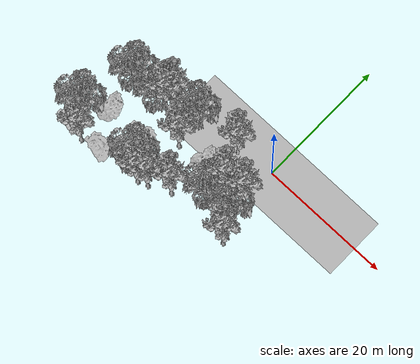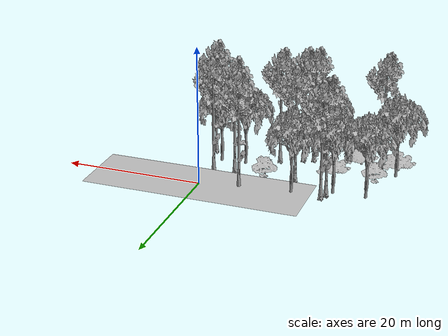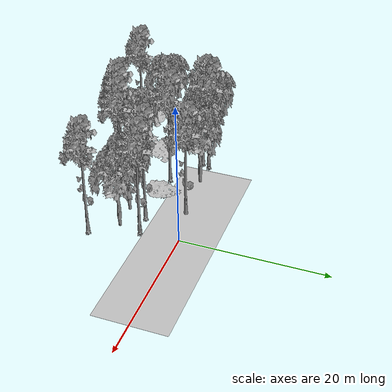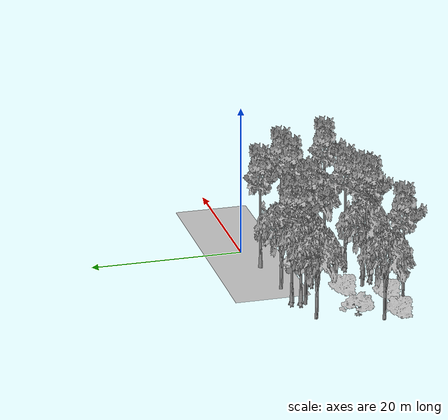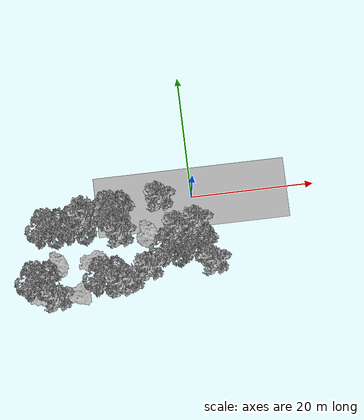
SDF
<sdf version="1.7">
 <world name="default">
  <model name="ground_plane">
   <static>1</static>
   <link name="link">
    <collision name="collision">
     <pose>-50 0 0 0 -0 0</pose>
     <geometry><plane><normal>0 0 1</normal><size>100 100</size></plane></geometry>
     <surface><contact><ode><min_depth>0.01</min_depth><max_vel>0</max_vel></ode></contact></surface>
    </collision>
    <visual name="grass">
     <cast_shadows>0</cast_shadows>
     <geometry>
      <mesh>
       <scale>0.5814285714285714 0.18142857142857144 0.1</scale>
       <uri>file://grass_plane/meshes/grass_plane.dae</uri>
      </mesh>
     </geometry>
    </visual>
   </link>
  </model>
  <model name="Tree 9">
   <static>1</static>
   <pose>-23.025613929217126 -8.91676801810691 0 1.57079 -0 0</pose>
   <link name="link">
    <collision name="collision">
     <geometry><mesh><scale>4 2.5 4</scale><uri>model://tree_1/meshes/tree_1.obj</uri></mesh></geometry>
    </collision>
    <visual name="visual">
     <geometry><mesh><scale>4 2.5 4</scale><uri>model://tree_1/meshes/tree_1.obj</uri></mesh></geometry>
    </visual>
   </link>
  </model>
  <model name="Tree 36">
   <static>1</static>
   <pose>-17.526671311683167 -3.070639153717357 0 1.57079 -0 0</pose>
   <link name="link">
    <collision name="collision">
     <geometry><mesh><scale>3.5 5 3.5</scale><uri>model://tree_9/meshes/tree_9.obj</uri></mesh></geometry>
    </collision>
    <visual name="visual">
     <geometry><mesh><scale>3.5 5 3.5</scale><uri>model://tree_9/meshes/tree_9.obj</uri></mesh></geometry>
    </visual>
   </link>
  </model>
  <model name="Tree 39">
   <static>1</static>
   <pose>-0.41180649521786705 -8.414782605388787 0 1.57079 -0 0</pose>
   <link name="link">
    <collision name="collision">
     <geometry><mesh><scale>3.5 5 3.5</scale><uri>model://tree_2/meshes/tree_2.obj</uri></mesh></geometry>
    </collision>
    <visual name="visual">
     <geometry><mesh><scale>3.5 5 3.5</scale><uri>model://tree_2/meshes/tree_2.obj</uri></mesh></geometry>
    </visual>
   </link>
  </model>
  <model name="Tree 43">
   <static>1</static>
   <pose>1.9057205157418835 -11.964457599320308 0 1.57079 -0 0</pose>
   <link name="link">
    <collision name="collision">
     <geometry><mesh><scale>3.5 5 3.5</scale><uri>model://tree_9/meshes/tree_9.obj</uri></mesh></geometry>
    </collision>
    <visual name="visual">
     <geometry><mesh><scale>3.5 5 3.5</scale><uri>model://tree_9/meshes/tree_9.obj</uri></mesh></geometry>
    </visual>
   </link>
  </model>
  <model name="Tree 45">
   <static>1</static>
   <pose>-13.003659625191375 -1.818947921730059 0 1.57079 -0 0</pose>
   <link name="link">
    <collision name="collision">
     <geometry><mesh><scale>3.5 5 3.5</scale><uri>model://tree_2/meshes/tree_2.obj</uri></mesh></geometry>
    </collision>
    <visual name="visual">
     <geometry><mesh><scale>3.5 5 3.5</scale><uri>model://tree_2/meshes/tree_2.obj</uri></mesh></geometry>
    </visual>
   </link>
  </model>
  <model name="Tree 47">
   <static>1</static>
   <pose>-5.517347171383321 -1.140977178630333 0 1.57079 -0 0</pose>
   <link name="link">
    <collision name="collision">
     <geometry><mesh><scale>3.5 5 3.5</scale><uri>model://tree_9/meshes/tree_9.obj</uri></mesh></geometry>
    </collision>
    <visual name="visual">
     <geometry><mesh><scale>3.5 5 3.5</scale><uri>model://tree_9/meshes/tree_9.obj</uri></mesh></geometry>
    </visual>
   </link>
  </model>
  <model name="Tree 54">
   <static>1</static>
   <pose>-18.480550047731416 -3.458089286826251 0 1.57079 -0 0</pose>
   <link name="link">
    <collision name="collision">
     <geometry><mesh><scale>3.5 5 3.5</scale><uri>model://tree_2/meshes/tree_2.obj</uri></mesh></geometry>
    </collision>
    <visual name="visual">
     <geometry><mesh><scale>3.5 5 3.5</scale><uri>model://tree_2/meshes/tree_2.obj</uri></mesh></geometry>
    </visual>
   </link>
  </model>
  <model name="Tree 81">
   <static>1</static>
   <pose>-11.330172826422043 -13.205206222225614 0 1.57079 -0 0</pose>
   <link name="link">
    <collision name="collision">
     <geometry><mesh><scale>3.5 5 3.5</scale><uri>model://tree_9/meshes/tree_9.obj</uri></mesh></geometry>
    </collision>
    <visual name="visual">
     <geometry><mesh><scale>3.5 5 3.5</scale><uri>model://tree_9/meshes/tree_9.obj</uri></mesh></geometry>
    </visual>
   </link>
  </model>
  <model name="Tree 86">
   <static>1</static>
   <pose>-25.532316332572503 -11.572508097937725 0 1.57079 -0 0</pose>
   <link name="link">
    <collision name="collision">
     <geometry><mesh><scale>3.5 5 3.5</scale><uri>model://tree_2/meshes/tree_2.obj</uri></mesh></geometry>
    </collision>
    <visual name="visual">
     <geometry><mesh><scale>3.5 5 3.5</scale><uri>model://tree_2/meshes/tree_2.obj</uri></mesh></geometry>
    </visual>
   </link>
  </model>
  <model name="Tree 95">
   <static>1</static>
   <pose>-0.12762539678974605 -5.492956377508106 0 1.57079 -0 0</pose>
   <link name="link">
    <collision name="collision">
     <geometry><mesh><scale>3.5 5 3.5</scale><uri>model://tree_9/meshes/tree_9.obj</uri></mesh></geometry>
    </collision>
    <visual name="visual">
     <geometry><mesh><scale>3.5 5 3.5</scale><uri>model://tree_9/meshes/tree_9.obj</uri></mesh></geometry>
    </visual>
   </link>
  </model>
  <model name="Tree 98">
   <static>1</static>
   <pose>-7.95290869777849 -5.442726312949745 0 1.57079 -0 0</pose>
   <link name="link">
    <collision name="collision">
     <geometry><mesh><scale>4 2.5 4</scale><uri>model://tree_1/meshes/tree_1.obj</uri></mesh></geometry>
    </collision>
    <visual name="visual">
     <geometry><mesh><scale>4 2.5 4</scale><uri>model://tree_1/meshes/tree_1.obj</uri></mesh></geometry>
    </visual>
   </link>
  </model>
  <model name="Tree 99">
   <static>1</static>
   <pose>-4.020987846555599 -8.618567439583698 0 1.57079 -0 0</pose>
   <link name="link">
    <collision name="collision">
     <geometry><mesh><scale>3.5 5 3.5</scale><uri>model://tree_2/meshes/tree_2.obj</uri></mesh></geometry>
    </collision>
    <visual name="visual">
     <geometry><mesh><scale>3.5 5 3.5</scale><uri>model://tree_2/meshes/tree_2.obj</uri></mesh></geometry>
    </visual>
   </link>
  </model>
  <model name="Tree 116">
   <static>1</static>
   <pose>-23.090929921111826 -3.5014836241395795 0 1.57079 -0 0</pose>
   <link name="link">
    <collision name="collision">
     <geometry><mesh><scale>3.5 5 3.5</scale><uri>model://tree_2/meshes/tree_2.obj</uri></mesh></geometry>
    </collision>
    <visual name="visual">
     <geometry><mesh><scale>3.5 5 3.5</scale><uri>model://tree_2/meshes/tree_2.obj</uri></mesh></geometry>
    </visual>
   </link>
  </model>
  <model name="Tree 124">
   <static>1</static>
   <pose>-12.79872232998133 -13.719742763202937 0 1.57079 -0 0</pose>
   <link name="link">
    <collision name="collision">
     <geometry><mesh><scale>3.5 5 3.5</scale><uri>model://tree_9/meshes/tree_9.obj</uri></mesh></geometry>
    </collision>
    <visual name="visual">
     <geometry><mesh><scale>3.5 5 3.5</scale><uri>model://tree_9/meshes/tree_9.obj</uri></mesh></geometry>
    </visual>
   </link>
  </model>
  <model name="Tree 127">
   <static>1</static>
   <pose>-16.95840245557479 -9.158433889548634 0 1.57079 -0 0</pose>
   <link name="link">
    <collision name="collision">
     <geometry><mesh><scale>3 2 3</scale><uri>model://tree_3/meshes/tree_3.obj</uri></mesh></geometry>
    </collision>
    <visual name="visual">
     <geometry><mesh><scale>3 2 3</scale><uri>model://tree_3/meshes/tree_3.obj</uri></mesh></geometry>
    </visual>
   </link>
  </model>
  <model name="Tree 145">
   <static>1</static>
   <pose>-19.845235098343053 -14.102809528426235 0 1.57079 -0 0</pose>
   <link name="link">
    <collision name="collision">
     <geometry><mesh><scale>3 2 3</scale><uri>model://tree_3/meshes/tree_3.obj</uri></mesh></geometry>
    </collision>
    <visual name="visual">
     <geometry><mesh><scale>3 2 3</scale><uri>model://tree_3/meshes/tree_3.obj</uri></mesh></geometry>
    </visual>
   </link>
  </model>
  <model name="Tree 149">
   <static>1</static>
   <pose>-3.178500959724275 -5.983369743947893 0 1.57079 -0 0</pose>
   <link name="link">
    <collision name="collision">
     <geometry><mesh><scale>3.5 5 3.5</scale><uri>model://tree_9/meshes/tree_9.obj</uri></mesh></geometry>
    </collision>
    <visual name="visual">
     <geometry><mesh><scale>3.5 5 3.5</scale><uri>model://tree_9/meshes/tree_9.obj</uri></mesh></geometry>
    </visual>
   </link>
  </model>
  <model name="Tree 158">
   <static>1</static>
   <pose>-12.177791077541123 -6.045605205379509 0 1.57079 -0 0</pose>
   <link name="link">
    <collision name="collision">
     <geometry><mesh><scale>3.5 5 3.5</scale><uri>model://tree_9/meshes/tree_9.obj</uri></mesh></geometry>
    </collision>
    <visual name="visual">
     <geometry><mesh><scale>3.5 5 3.5</scale><uri>model://tree_9/meshes/tree_9.obj</uri></mesh></geometry>
    </visual>
   </link>
  </model>
  <model name="Tree 159">
   <static>1</static>
   <pose>-17.06550550180032 -2.013279925984996 0 1.57079 -0 0</pose>
   <link name="link">
    <collision name="collision">
     <geometry><mesh><scale>3.5 5 3.5</scale><uri>model://tree_9/meshes/tree_9.obj</uri></mesh></geometry>
    </collision>
    <visual name="visual">
     <geometry><mesh><scale>3.5 5 3.5</scale><uri>model://tree_9/meshes/tree_9.obj</uri></mesh></geometry>
    </visual>
   </link>
  </model>
  <model name="Tree 170">
   <static>1</static>
   <pose>-25.346367382937554 -13.87986820537142 0 1.57079 -0 0</pose>
   <link name="link">
    <collision name="collision">
     <geometry><mesh><scale>3 2 3</scale><uri>model://tree_3/meshes/tree_3.obj</uri></mesh></geometry>
    </collision>
    <visual name="visual">
     <geometry><mesh><scale>3 2 3</scale><uri>model://tree_3/meshes/tree_3.obj</uri></mesh></geometry>
    </visual>
   </link>
  </model>
  <model name="Tree 172">
   <static>1</static>
   <pose>-22.726283356844906 -14.819649598028855 0 1.57079 -0 0</pose>
   <link name="link">
    <collision name="collision">
     <geometry><mesh><scale>3.5 5 3.5</scale><uri>model://tree_9/meshes/tree_9.obj</uri></mesh></geometry>
    </collision>
    <visual name="visual">
     <geometry><mesh><scale>3.5 5 3.5</scale><uri>model://tree_9/meshes/tree_9.obj</uri></mesh></geometry>
    </visual>
   </link>
  </model>
  <model name="Tree 175">
   <static>1</static>
   <pose>-14.869593478640077 -12.042253030012779 0 1.57079 -0 0</pose>
   <link name="link">
    <collision name="collision">
     <geometry><mesh><scale>3.5 5 3.5</scale><uri>model://tree_2/meshes/tree_2.obj</uri></mesh></geometry>
    </collision>
    <visual name="visual">
     <geometry><mesh><scale>3.5 5 3.5</scale><uri>model://tree_2/meshes/tree_2.obj</uri></mesh></geometry>
    </visual>
   </link>
  </model>
  <model name="Tree 178">
   <static>1</static>
   <pose>-8.200523211263693 -11.728940955455254 0 1.57079 -0 0</pose>
   <link name="link">
    <collision name="collision">
     <geometry><mesh><scale>3.5 5 3.5</scale><uri>model://tree_9/meshes/tree_9.obj</uri></mesh></geometry>
    </collision>
    <visual name="visual">
     <geometry><mesh><scale>3.5 5 3.5</scale><uri>model://tree_9/meshes/tree_9.obj</uri></mesh></geometry>
    </visual>
   </link>
  </model>
 </world>
</sdf>
